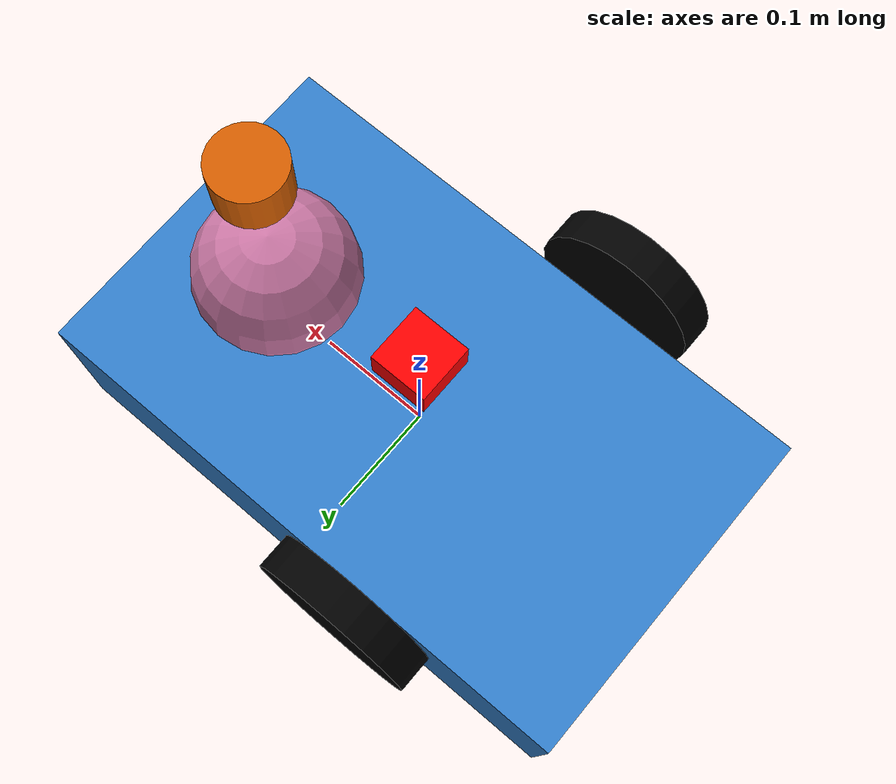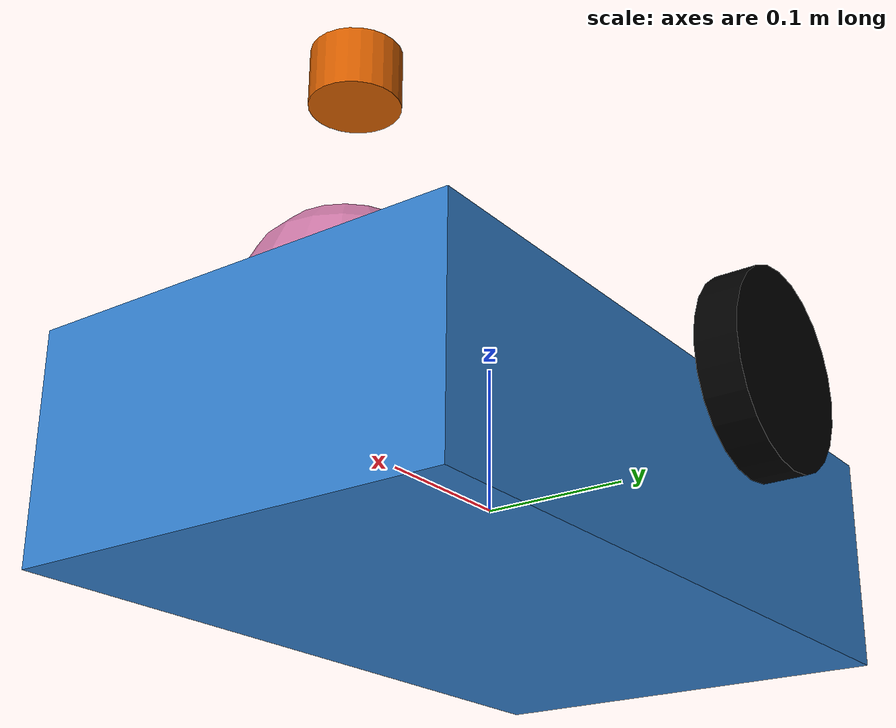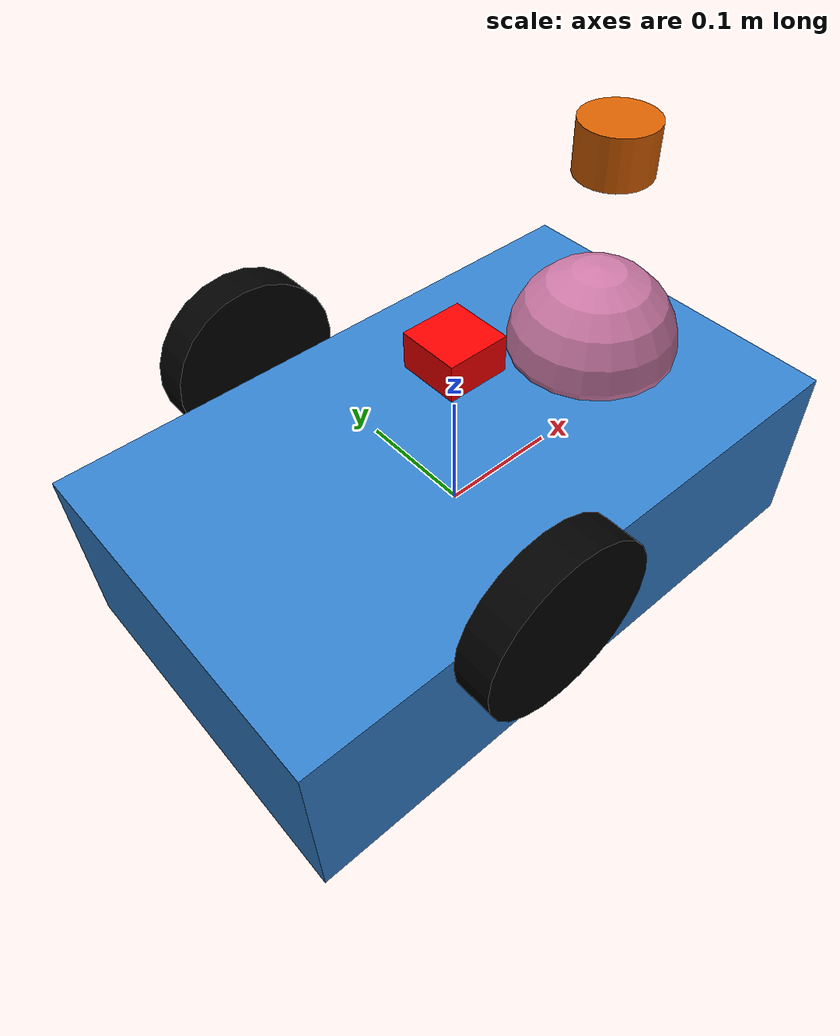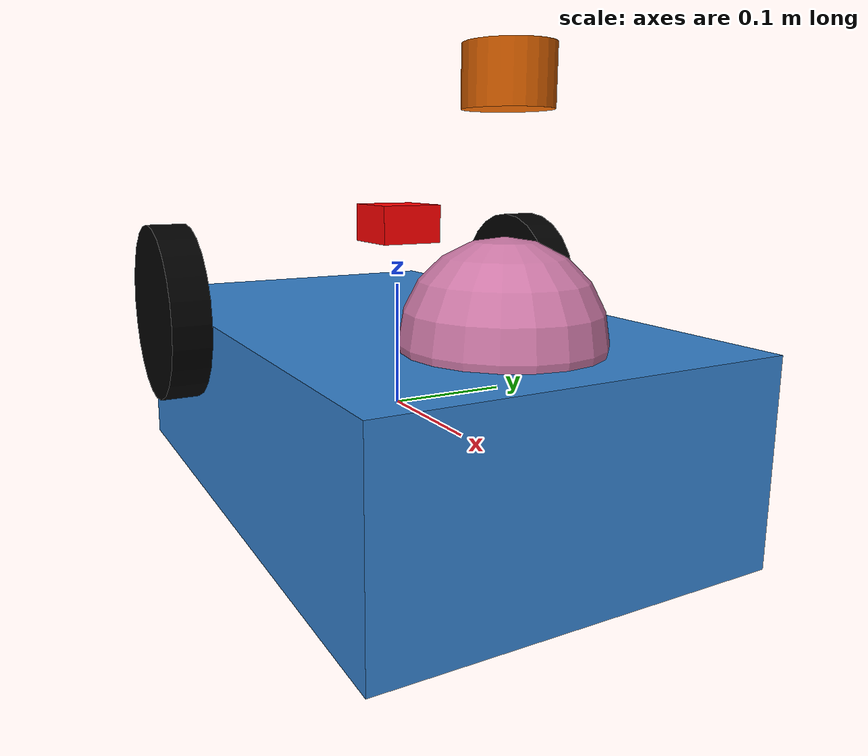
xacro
<?xml version="1.0"?>
<robot name="two_wheel_robot" xmlns:xacro="http://www.ros.org/wiki/xacro">
<link name="world"/>
<joint name="world_to_base" type="fixed">
    <parent link="world"/>
    <child link="base_link"/>
</joint>

  <!-- Base Link -->
  <link name="base_link">
    <visual>
      <geometry>
        <box size="0.5 0.3 0.15"/>
      </geometry>
      <origin xyz="0 0 0" rpy="0 0 0"/>
      <material name="blue">
        <color rgba="0.2 0.5 0.8 1"/>
      </material>
    </visual>

    <collision>
      <geometry>
        <box size="0.5 0.3 0.15"/>
      </geometry>
      <origin xyz="0 0 0" rpy="0 0 0"/>
    </collision>

    <inertial>
      <origin xyz="0 0 0" rpy="0 0 0"/>
      <mass value="5.0"/>
      <inertia ixx="0.1" iyy="0.1" izz="0.1"
               ixy="0" ixz="0" iyz="0"/>
    </inertial>
  </link>

  <!-- Left Wheel -->
  <link name="left_wheel">
    <visual>
      <geometry>
        <cylinder radius="0.07" length="0.03"/>
      </geometry>
      <origin xyz="0 0 0" rpy="1.5708 0 0"/>
      <material name="black">
        <color rgba="0 0 0 1"/>
      </material>
    </visual>
    <collision>
      <geometry>
        <cylinder radius="0.07" length="0.03"/>
      </geometry>
      <origin xyz="0 0 0" rpy="1.5708 0 0"/>
    </collision>
    <inertial>
      <origin xyz="0 0 0" rpy="1.5708 0 0"/>
      <mass value="0.5"/>
      <inertia ixx="0.01" iyy="0.01" izz="0.01"
               ixy="0" ixz="0" iyz="0"/>
    </inertial>
  </link>

  <!-- Left Wheel Joint -->
  <joint name="left_wheel_joint" type="continuous">
    <parent link="base_link"/>
    <child link="left_wheel"/>
    <origin xyz="-0.07 0.17 0.08" rpy="0 0 0"/>
    <axis xyz="0 0 1"/>
     <limit lower="-3.14" upper="3.14" effort="10" velocity="10"/>
  </joint>

  <!-- Right Wheel -->
  <link name="right_wheel">
    <visual>
      <geometry>
        <cylinder radius="0.07" length="0.03"/>
      </geometry>
      <origin xyz="0 0 0" rpy="1.5708 0 0"/>
      <material name="black">
        <color rgba="0 0 0 1"/>
      </material>
    </visual>
    <collision>
      <geometry>
        <cylinder radius="0.07" length="0.03"/>
      </geometry>
      <origin xyz="0 0 0" rpy="1.5708 0 0"/>
    </collision>
    <inertial>
      <origin xyz="0 0 0" rpy="1.5708 0 0"/>
      <mass value="0.5"/>
      <inertia ixx="0.01" iyy="0.01" izz="0.01"
               ixy="0" ixz="0" iyz="0"/>
    </inertial>
  </link>

  <!-- Right Wheel Joint -->
  <joint name="right_wheel_joint" type="continuous">
    <parent link="base_link"/>
    <child link="right_wheel"/>
    <origin xyz="-0.07 -0.17 0.08" rpy="0 0 0"/>
    <axis xyz="0 0 1"/>
     <limit lower="-3.14" upper="3.14" effort="10" velocity="10"/>
  </joint>

  <!-- IMU -->
  <link name="imu_link">
    <visual>
      <geometry>
        <box size="0.05 0.05 0.03"/>
      </geometry>
      <origin xyz="0 0 0" rpy="0 0 0"/>
      <material name="red">
        <color rgba="1 0 0 1"/>
      </material>
    </visual>
  </link>

  <joint name="imu_joint" type="fixed">
    <parent link="base_link"/>
    <child link="imu_link"/>
    <origin xyz="0 0 0.15" rpy="0 0 0"/>
  </joint>

  <!-- LiDAR -->
  <link name="lidar_link">
    <visual>
      <geometry>
        <cylinder radius="0.03" length="0.04"/>
      </geometry>
      <origin xyz="0 0 0" rpy="0 0 0"/>
    </visual>
  </link>

  <joint name="lidar_joint" type="fixed">
    <parent link="base_link"/>
    <child link="lidar_link"/>
    <origin xyz="0.15 0 0.25" rpy="0 0 0"/>
  </joint>

  <!-- Caster -->
  <link name="caster_wheel">
    <visual>
      <geometry>
        <sphere radius="0.07"/>
      </geometry>
      <origin xyz="0 0 0" rpy="0 0 0"/>
    </visual>
  </link>

  <joint name="caster_joint" type="fixed">
    <parent link="base_link"/>
    <child link="caster_wheel"/>
    <origin xyz="0.15 0 0.08" rpy="0 0 0"/>
  </joint>

</robot>
